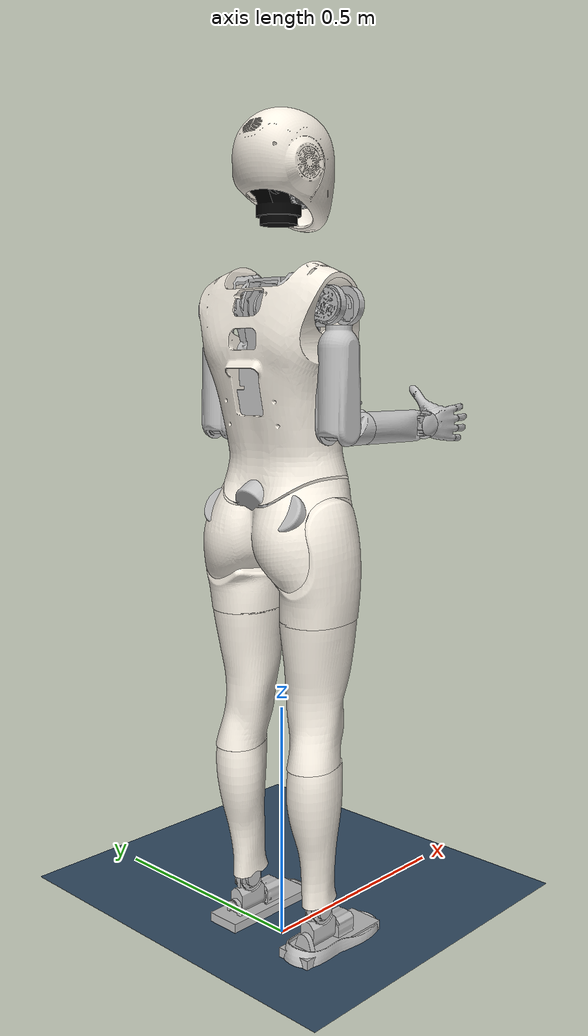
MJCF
<mujoco model="F2">
  <compiler angle="radian" meshdir="./meshes/"/>
  <default>
    <joint damping="0.1" armature="0.01" frictionloss="0.01"/>
  </default>
  <asset>
    <mesh name="pelvis" file="pelvis.STL"/>
    <mesh name="lattice_in_pelvis_link" file="lattice_in_pelvis_link.STL"/>
    <mesh name="left_hip_pitch_link" file="left_hip_pitch_link.STL"/>
    <mesh name="left_hip_roll_link" file="left_hip_roll_link.STL"/>
    <mesh name="left_hip_yaw_link" file="left_hip_yaw_link.STL"/>
    <mesh name="left_knee_link" file="left_knee_link.STL"/>
    <mesh name="left_ankle_pitch_link" file="left_ankle_pitch_link.STL"/>
    <mesh name="left_ankle_roll_link" file="left_ankle_roll_link.STL"/>
    <mesh name="lattice_in_l_knee_link" file="lattice_in_l_knee_link.STL"/>
    <mesh name="lattice_in_l_hip_yaw_link" file="lattice_in_l_hip_yaw_link.STL"/>
    <mesh name="lattice_in_l_hip_roll_link" file="lattice_in_l_hip_roll_link.STL"/>
    <mesh name="right_hip_pitch_link" file="right_hip_pitch_link.STL"/>
    <mesh name="right_hip_roll_link" file="right_hip_roll_link.STL"/>
    <mesh name="right_hip_yaw_link" file="right_hip_yaw_link.STL"/>
    <mesh name="right_knee_link" file="right_knee_link.STL"/>
    <mesh name="right_ankle_pitch_link" file="right_ankle_pitch_link.STL"/>
    <mesh name="right_ankle_roll_link" file="right_ankle_roll_link.STL"/>
    <mesh name="lattice_in_r_knee_link" file="lattice_in_r_knee_link.STL"/>
    <mesh name="lattice_in_r_hip_yaw_link" file="lattice_in_r_hip_yaw_link.STL"/>
    <mesh name="lattice_in_r_hip_roll_link" file="lattice_in_r_hip_roll_link.STL"/>
    <mesh name="waist_yaw_link" file="waist_yaw_link.STL"/>
    <mesh name="torso_link" file="torso_link.STL"/>
    <mesh name="lattice_in_torso_link" file="lattice_in_torso_link.STL"/>
    <mesh name="left_shoulder_pitch_link" file="left_shoulder_pitch_link.STL"/>
    <mesh name="left_shoulder_roll_link" file="left_shoulder_roll_link.STL"/>
    <mesh name="left_shoulder_yaw_link" file="left_shoulder_yaw_link.STL"/>
    <mesh name="left_elbow_link" file="left_elbow_link.STL"/>
    <mesh name="left_wrist_roll_link_v1_1" file="left_wrist_roll_link_v1_1.STL"/>
    <mesh name="left_wrist_yaw_link_v1_1" file="left_wrist_yaw_link_v1_1.STL"/>
    <mesh name="left_wrist_pitch_link_v1_1" file="left_wrist_pitch_link_v1_1.STL"/>
    <mesh name="left_hand_link" file="left_hand_link.STL"/>
    <mesh name="right_shoulder_pitch_link" file="right_shoulder_pitch_link.STL"/>
    <mesh name="right_shoulder_roll_link" file="right_shoulder_roll_link.STL"/>
    <mesh name="right_shoulder_yaw_link" file="right_shoulder_yaw_link.STL"/>
    <mesh name="right_elbow_link" file="right_elbow_link.STL"/>
    <mesh name="right_wrist_roll_link_v1_1" file="right_wrist_roll_link_v1_1.STL"/>
    <mesh name="right_wrist_yaw_link_v1_1" file="right_wrist_yaw_link_v1_1.STL"/>
    <mesh name="right_wrist_pitch_link_v1_1" file="right_wrist_pitch_link_v1_1.STL"/>
    <mesh name="right_hand_link" file="right_hand_link.STL"/>
    <mesh name="head_yaw_link" file="head_yaw_link.STL"/>
    <mesh name="head_pitch_link_v1" file="head_pitch_link_v1.STL"/>
    <mesh name="camera_head_up" file="camera_head_up.STL"/>
    <mesh name="camera_head_down" file="camera_head_down.STL"/>
  </asset>

  <worldbody>
    <body name="pelvis" pos="0 0 0.873">
      <inertial pos="-0.00635708 1.42565e-05 0.00326838" quat="0.570297 0.561872 -0.427193 0.4202" mass="2.509" diaginertia="0.01001 0.00750381 0.00695229"/>
      <joint name="floating_base_joint" type="free" limited="false" actuatorfrclimited="false"/>
      <geom type="mesh" contype="0" conaffinity="0" group="1" density="0" rgba="0.75 0.75 0.75 1" mesh="pelvis"/>
      <geom type="mesh" rgba="0.75 0.75 0.75 1" mesh="pelvis"/>
      <geom type="mesh" contype="0" conaffinity="0" group="1" density="0" rgba="0.957 0.929 0.882 1" mesh="lattice_in_pelvis_link"/>
      <body name="left_hip_pitch_link" pos="0 0.0495 0">
        <inertial pos="-0.00059823 0.053979 -0.0042224" quat="0.652315 0.75755 -0.0242065 0.00423816" mass="1.04" diaginertia="0.00138575 0.00113626 0.000872142"/>
        <joint name="left_hip_pitch_joint" pos="0 0 0" axis="0 1 0" range="-2.3562 2.3562" actuatorfrcrange="-75 75"/>
        <geom type="mesh" contype="0" conaffinity="0" group="1" density="0" rgba="0.75 0.75 0.75 1" mesh="left_hip_pitch_link"/>
        <geom type="mesh" rgba="0.75 0.75 0.75 1" mesh="left_hip_pitch_link"/>
        <body name="left_hip_roll_link" pos="0 0.0555 -0.005">
          <inertial pos="0.0015715 -0.0406088 -0.0402838" quat="0.595942 0.0278281 -0.0257545 0.802132" mass="0.51" diaginertia="0.00282716 0.00269308 0.00187179"/>
          <joint name="left_hip_roll_joint" pos="0 0 0" axis="1 0 0" range="-0.3491 2.1817" actuatorfrcrange="-87 87"/>
          <geom type="mesh" contype="0" conaffinity="0" group="1" density="0" rgba="0.75 0.75 0.75 1" mesh="left_hip_roll_link"/>
          <geom type="mesh" rgba="0.75 0.75 0.75 1" mesh="left_hip_roll_link"/>
          <geom pos="0 -0.055 0" quat="1 0 0 0" type="mesh" contype="0" conaffinity="0" group="1" density="0" rgba="0.957 0.929 0.882 1" mesh="lattice_in_l_hip_roll_link"/>
          <body name="left_hip_yaw_link" pos="0 0 -0.0536">
            <inertial pos="0.000235326 -0.00106704 -0.103858" quat="0.999838 0.00124236 -0.00123377 0.0179267" mass="2.472" diaginertia="0.0209421 0.0204684 0.00282082"/>
            <joint name="left_hip_yaw_joint" pos="0 0 0" axis="0 0 1" range="-2.0944 2.0944" actuatorfrcrange="-87 87"/>
            <geom type="mesh" contype="0" conaffinity="0" group="1" density="0" rgba="0.75 0.75 0.75 1" mesh="left_hip_yaw_link"/>
            <geom type="mesh" rgba="0.75 0.75 0.75 1" mesh="left_hip_yaw_link"/>
            <geom pos="0 0 0.0635" quat="1 0 0 0" type="mesh" contype="0" conaffinity="0" group="1" density="0" rgba="0.957 0.929 0.882 1" mesh="lattice_in_l_hip_yaw_link"/>
            <body name="left_knee_link" pos="0 0 -0.3304">
              <inertial pos="-0.000572377 -0.000248121 -0.157321" quat="0.723601 -0.00341533 -0.00184152 0.690208" mass="0.81" diaginertia="0.0124613 0.0122931 0.000640496"/>
              <joint name="left_knee_joint" pos="0 0 0" axis="0 1 0" range="-0.01745 2.3562" actuatorfrcrange="-120 120"/>
              <geom type="mesh" contype="0" conaffinity="0" group="1" density="0" rgba="0.75 0.75 0.75 1" mesh="left_knee_link"/>
              <geom type="mesh" rgba="0.75 0.75 0.75 1" mesh="left_knee_link"/>
              <geom type="mesh" contype="0" conaffinity="0" group="1" density="0" rgba="0.957 0.929 0.882 1" mesh="lattice_in_l_knee_link"/>
              <body name="left_ankle_pitch_link" pos="0 0 -0.39">
                <inertial pos="0.0024178 -1.256e-05 -0.0238176" quat="0.704903 0.052882 0.0527757 0.705358" mass="0.22" diaginertia="0.00023561 0.000170507 9.99229e-05"/>
                <joint name="left_ankle_pitch_joint" pos="0 0 0" axis="0 1 0" range="-0.873 1.2217" actuatorfrcrange="-89 89"/>
                <geom type="mesh" contype="0" conaffinity="0" group="1" density="0" rgba="0.75 0.75 0.75 1" mesh="left_ankle_pitch_link"/>
                <geom type="mesh" rgba="0.75 0.75 0.75 1" mesh="left_ankle_pitch_link"/>
                <body name="left_ankle_roll_link" pos="0 0 -0.058">
                  <inertial pos="0.0510876 0.00023922 -0.00447269" quat="0 0.707107 0 0.707107" mass="0.411" diaginertia="0.00047916 0.00047226 9.993e-05"/>
                  <joint name="left_ankle_roll_joint" pos="0 0 0" axis="1 0 0" range="-0.5236 0.5236" actuatorfrcrange="-12 12"/>
                  <geom type="mesh" contype="0" conaffinity="0" group="1" density="0" rgba="0.75 0.75 0.75 1" mesh="left_ankle_roll_link"/>
                  <geom name="l_foot_collision" type="box" size="0.115 0.039 0.01" pos="0.038 0 -0.025" rgba="0.75294 0.75294 0.75294 1" condim="3" />
                </body>
              </body>
            </body>
          </body>
        </body>
      </body>
      <body name="right_hip_pitch_link" pos="0 -0.0495 0">
        <inertial pos="-0.00059823 -0.053979 -0.0042224" quat="0.75755 0.652315 -0.00423816 0.0242065" mass="1.04" diaginertia="0.00138575 0.00113626 0.000872142"/>
        <joint name="right_hip_pitch_joint" pos="0 0 0" axis="0 1 0" range="-2.3562 2.3562" actuatorfrcrange="-75 75"/>
        <geom type="mesh" contype="0" conaffinity="0" group="1" density="0" rgba="0.75 0.75 0.75 1" mesh="right_hip_pitch_link"/>
        <geom type="mesh" rgba="0.75 0.75 0.75 1" mesh="right_hip_pitch_link"/>
        <body name="right_hip_roll_link" pos="0 -0.0555 -0.005">
          <inertial pos="0.00157665 0.0401879 -0.0402869" quat="0.797527 -0.0257039 0.0281181 0.602079" mass="0.51" diaginertia="0.00282663 0.002687 0.00186526"/>
          <joint name="right_hip_roll_joint" pos="0 0 0" axis="1 0 0" range="-2.1817 0.3491" actuatorfrcrange="-87 87"/>
          <geom type="mesh" contype="0" conaffinity="0" group="1" density="0" rgba="0.75 0.75 0.75 1" mesh="right_hip_roll_link"/>
          <geom type="mesh" rgba="0.75 0.75 0.75 1" mesh="right_hip_roll_link"/>
          <geom pos="0 0.055 0" quat="1 0 0 0" type="mesh" contype="0" conaffinity="0" group="1" density="0" rgba="0.957 0.929 0.882 1" mesh="lattice_in_r_hip_roll_link"/>
          <body name="right_hip_yaw_link" pos="0 0 -0.0536">
            <inertial pos="0.000402709 0.000752913 -0.103856" quat="0.999891 0.00375328 -0.00228738 -0.0141039" mass="2.472" diaginertia="0.0209443 0.0204697 0.0028221"/>
            <joint name="right_hip_yaw_joint" pos="0 0 0" axis="0 0 1" range="-2.0944 2.0944" actuatorfrcrange="-87 87"/>
            <geom type="mesh" contype="0" conaffinity="0" group="1" density="0" rgba="0.75 0.75 0.75 1" mesh="right_hip_yaw_link"/>
            <geom type="mesh" rgba="0.75 0.75 0.75 1" mesh="right_hip_yaw_link"/>
            <geom pos="0 0 0.0635" quat="1 0 0 0" type="mesh" contype="0" conaffinity="0" group="1" density="0" rgba="0.957 0.929 0.882 1" mesh="lattice_in_r_hip_yaw_link"/>
            <body name="right_knee_link" pos="0 0 -0.3304">
              <inertial pos="-0.000569391 -0.000142016 -0.157324" quat="0.696563 -0.00165239 -0.0036027 0.717485" mass="0.81" diaginertia="0.0124607 0.0122939 0.000640507"/>
              <joint name="right_knee_joint" pos="0 0 0" axis="0 1 0" range="-0.01745 2.3562" actuatorfrcrange="-120 120"/>
              <geom type="mesh" contype="0" conaffinity="0" group="1" density="0" rgba="0.75 0.75 0.75 1" mesh="right_knee_link"/>
              <geom type="mesh" rgba="0.75 0.75 0.75 1" mesh="right_knee_link"/>
              <geom type="mesh" contype="0" conaffinity="0" group="1" density="0" rgba="0.957 0.929 0.882 1" mesh="lattice_in_r_knee_link"/>
              <body name="right_ankle_pitch_link" pos="0 0 -0.39">
                <inertial pos="0.0024178 -1.257e-05 -0.023818" quat="0.704903 0.052882 0.0527757 0.705358" mass="0.22" diaginertia="0.00023561 0.000170507 9.99229e-05"/>
                <joint name="right_ankle_pitch_joint" pos="0 0 0" axis="0 1 0" range="-0.873 1.2217" actuatorfrcrange="-89 89"/>
                <geom type="mesh" contype="0" conaffinity="0" group="1" density="0" rgba="0.75 0.75 0.75 1" mesh="right_ankle_pitch_link"/>
                <geom type="mesh" rgba="0.75 0.75 0.75 1" mesh="right_ankle_pitch_link"/>
                <body name="right_ankle_roll_link" pos="0 0 -0.058">
                  <inertial pos="0.0510876 0.00023921 -0.00447269" quat="0 0.707107 0 0.707107" mass="0.411" diaginertia="0.00047916 0.00047226 9.993e-05"/>
                  <joint name="right_ankle_roll_joint" pos="0 0 0" axis="1 0 0" range="-0.5236 0.5236" actuatorfrcrange="-12 12"/>
                  <geom type="mesh" contype="0" conaffinity="0" group="1" density="0" rgba="0.75 0.75 0.75 1" mesh="right_ankle_roll_link"/>
                  <geom name="r_foot_collision" type="box" size="0.115 0.039 0.01" pos="0.038 0 -0.025" rgba="0.75294 0.75294 0.75294 1" condim="3" />
                </body>
              </body>
            </body>
          </body>
        </body>
      </body>
      <body name="waist_yaw_link" pos="0 0 0.0955">
        <inertial pos="0 0 -0.038" quat="0.5 0.5 -0.5 0.5" mass="0.015" diaginertia="3.7638e-06 2.0041e-06 2.0041e-06"/>
        <joint name="waist_yaw_joint" pos="0 0 0" axis="0 0 1" range="-1.5708 1.5708" actuatorfrcrange="-87 87"/>
        <geom type="mesh" contype="0" conaffinity="0" group="1" density="0" rgba="0.75 0.75 0.75 1" mesh="waist_yaw_link"/>
        <body name="torso_link">
          <inertial pos="-0.000427592 0.00133209 0.192573" quat="0.999983 0.000374811 0.00583186 0.000211129" mass="8.559" diaginertia="0.149386 0.144217 0.0339852"/>
          <joint name="waist_roll_joint" pos="0 0 0" axis="1 0 0" range="-0.5236 0.5236" actuatorfrcrange="-87 87"/>
          <geom type="mesh" contype="0" conaffinity="0" group="1" density="0" rgba="0.75 0.75 0.75 1" mesh="torso_link"/>
          <geom type="mesh" rgba="0.75 0.75 0.75 1" mesh="torso_link"/>
          <geom pos="0 0 0.0585" type="mesh" contype="0" conaffinity="0" group="1" density="0" rgba="0.957 0.929 0.882 1" mesh="lattice_in_torso_link"/>
          <body name="left_shoulder_pitch_link" pos="-0.015 0.05635 0.342">
            <inertial pos="5.543e-05 0.0554533 5.429e-05" quat="0.500477 0.499362 -0.499832 0.500328" mass="1.277" diaginertia="0.00194002 0.00178135 0.00103975"/>
            <geom type="mesh" contype="0" conaffinity="0" group="1" density="0" rgba="0.75 0.75 0.75 1" mesh="left_shoulder_pitch_link"/>
            <geom type="mesh" rgba="0.75 0.75 0.75 1" mesh="left_shoulder_pitch_link"/>
            <body name="left_shoulder_roll_link" pos="0 0.1031 0">
              <inertial pos="0 -0.00015563 -0.00797243" quat="0.449914 0.545507 0.449914 0.545507" mass="0.229" diaginertia="7.05648e-05 6.60152e-05 5.784e-05"/>
              <geom type="mesh" contype="0" conaffinity="0" group="1" density="0" rgba="0.75 0.75 0.75 1" mesh="left_shoulder_roll_link"/>
              <geom type="mesh" rgba="0.75 0.75 0.75 1" mesh="left_shoulder_roll_link"/>
              <body name="left_shoulder_yaw_link">
                <inertial pos="-7.8318e-05 0.001011 -0.12915" mass="1.194" diaginertia="0.00412845 0.00411827 0.00084103"/>
                <geom type="mesh" contype="0" conaffinity="0" group="1" density="0" rgba="0.75 0.75 0.75 1" mesh="left_shoulder_yaw_link"/>
                <geom type="mesh" rgba="0.75 0.75 0.75 1" mesh="left_shoulder_yaw_link"/>
                <body name="left_elbow_link" pos="0 0 -0.2295">
                  <inertial pos="0.0167741 0 -0.00133301" quat="0 0.684589 0 0.728929" mass="0.185" diaginertia="0.000124726 0.00011358 7.98035e-05"/>
                  <geom type="mesh" contype="0" conaffinity="0" group="1" density="0" rgba="0.75 0.75 0.75 1" mesh="left_elbow_link"/>
                  <geom type="mesh" rgba="0.75 0.75 0.75 1" mesh="left_elbow_link"/>
                  <body name="left_wrist_roll_link">
                    <inertial pos="0.0985386 -0.00025438 -0.00071846" quat="0.49661 0.497949 0.510134 0.495166" mass="1.372" diaginertia="0.00443163 0.00434654 0.000486748"/>
                    <geom type="mesh" contype="0" conaffinity="0" group="1" density="0" rgba="0.75 0.75 0.75 1" mesh="left_wrist_roll_link_v1_1"/>
                    <geom type="mesh" rgba="0.75 0.75 0.75 1" mesh="left_wrist_roll_link_v1_1"/>
                    <body name="left_wrist_yaw_link" pos="0.23 0 0">
                      <inertial pos="0.0075268 0 0" quat="0.5 0.5 -0.5 0.5" mass="0.042" diaginertia="1.443e-05 1.052e-05 7.83e-06"/>
                      <geom type="mesh" contype="0" conaffinity="0" group="1" density="0" rgba="0.75 0.75 0.75 1" mesh="left_wrist_yaw_link_v1_1"/>
                      <geom type="mesh" rgba="0.75 0.75 0.75 1" mesh="left_wrist_yaw_link_v1_1"/>
                      <body name="left_wrist_pitch_link" pos="0.021 0 0">
                        <inertial pos="0.0745833 -0.00635348 0.00761055" quat="0.678574 0.334153 0.560893 0.336567" mass="0.53" diaginertia="0.00194365 0.00160851 0.000486104"/>
                        <geom type="mesh" contype="0" conaffinity="0" group="1" density="0" rgba="0.75 0.75 0.75 1" mesh="left_wrist_pitch_link_v1_1"/>
                        <geom pos="0.016 0 0" quat="1 0 0 0" type="mesh" contype="0" conaffinity="0" group="1" density="0" rgba="0.75 0.75 0.75 1" mesh="left_hand_link"/>
                        <geom pos="0.016 0 0" quat="1 0 0 0" type="mesh" rgba="0.75 0.75 0.75 1" mesh="left_hand_link"/>
                      </body>
                    </body>
                  </body>
                </body>
              </body>
            </body>
          </body>
          <body name="right_shoulder_pitch_link" pos="-0.015 -0.05635 0.342">
            <inertial pos="0.00015543 -0.0554533 -5.429e-05" quat="0.500328 0.499832 -0.499362 0.500477" mass="1.277" diaginertia="0.00194002 0.00178135 0.00103975"/>
            <geom type="mesh" contype="0" conaffinity="0" group="1" density="0" rgba="0.75 0.75 0.75 1" mesh="right_shoulder_pitch_link"/>
            <geom type="mesh" rgba="0.75 0.75 0.75 1" mesh="right_shoulder_pitch_link"/>
            <body name="right_shoulder_roll_link" pos="0 -0.1031 0">
              <inertial pos="0 -0.00015563 -0.00797243" quat="0.449914 0.545507 0.449914 0.545507" mass="0.229" diaginertia="7.05648e-05 6.60152e-05 5.784e-05"/>
              <geom type="mesh" contype="0" conaffinity="0" group="1" density="0" rgba="0.75 0.75 0.75 1" mesh="right_shoulder_roll_link"/>
              <geom type="mesh" rgba="0.75 0.75 0.75 1" mesh="right_shoulder_roll_link"/>
              <body name="right_shoulder_yaw_link">
                <inertial pos="-7.8318e-05 0.001011 -0.12915" mass="1.194" diaginertia="0.00412845 0.00411827 0.00084103"/>
                <geom type="mesh" contype="0" conaffinity="0" group="1" density="0" rgba="0.75 0.75 0.75 1" mesh="right_shoulder_yaw_link"/>
                <geom type="mesh" rgba="0.75 0.75 0.75 1" mesh="right_shoulder_yaw_link"/>
                <body name="right_elbow_link" pos="0 0 -0.2295">
                  <inertial pos="0.0167741 0 -0.00133301" quat="0 0.684589 0 0.728929" mass="0.185" diaginertia="0.000124726 0.00011358 7.98035e-05"/>
                  <geom type="mesh" contype="0" conaffinity="0" group="1" density="0" rgba="0.75 0.75 0.75 1" mesh="right_elbow_link"/>
                  <geom type="mesh" rgba="0.75 0.75 0.75 1" mesh="right_elbow_link"/>
                  <body name="right_wrist_roll_link">
                    <inertial pos="0.0985386 -0.00025438 -0.00071846" quat="0.49661 0.497949 0.510134 0.495166" mass="1.372" diaginertia="0.00443163 0.00434654 0.000486748"/>
                    <geom type="mesh" contype="0" conaffinity="0" group="1" density="0" rgba="0.75 0.75 0.75 1" mesh="right_wrist_roll_link_v1_1"/>
                    <geom type="mesh" rgba="0.75 0.75 0.75 1" mesh="right_wrist_roll_link_v1_1"/>
                    <body name="right_wrist_yaw_link" pos="0.23 0 0">
                      <inertial pos="0.0075268 0 0" quat="0.5 0.5 -0.5 0.5" mass="0.042" diaginertia="1.443e-05 1.052e-05 7.83e-06"/>
                      <geom type="mesh" contype="0" conaffinity="0" group="1" density="0" rgba="0.75 0.75 0.75 1" mesh="right_wrist_yaw_link_v1_1"/>
                      <geom type="mesh" rgba="0.75 0.75 0.75 1" mesh="right_wrist_yaw_link_v1_1"/>
                      <body name="right_wrist_pitch_link" pos="0.021 0 0">
                        <inertial pos="0.0745935 0.00622963 0.00761411" quat="0.335443 0.560268 0.335448 0.679009" mass="0.53" diaginertia="0.00194428 0.00160939 0.000486062"/>
                        <geom type="mesh" contype="0" conaffinity="0" group="1" density="0" rgba="0.75 0.75 0.75 1" mesh="right_wrist_pitch_link_v1_1"/>
                        <geom pos="0.016 0 0" quat="1 0 0 0" type="mesh" contype="0" conaffinity="0" group="1" density="0" rgba="0.75 0.75 0.75 1" mesh="right_hand_link"/>
                        <geom pos="0.016 0 0" quat="1 0 0 0" type="mesh" rgba="0.75 0.75 0.75 1" mesh="right_hand_link"/>
                      </body>
                    </body>
                  </body>
                </body>
              </body>
            </body>
          </body>
          <body name="head_yaw_link" pos="-0.011 0 0.5218">
            <inertial pos="-0.0115151 0 0.019677" quat="0.959901 0 -0.28034 0" mass="0.56" diaginertia="0.000485828 0.000458813 0.000216341"/>
            <geom type="mesh" contype="0" conaffinity="0" group="1" density="0" rgba="0.02 0.02 0.02 1" mesh="head_yaw_link"/>
            <geom type="mesh" rgba="0.02 0.02 0.02 1" mesh="head_yaw_link"/>
            <body name="head_pitch_link" pos="-0.0295 0 0.0503">
              <inertial pos="0.0591379 9.60588e-05 0.023895" quat="0.333115 0.621776 0.626101 0.332305" mass="1.10494" diaginertia="0.00629485 0.00565829 0.00484556"/>
              <geom type="mesh" contype="0" conaffinity="0" group="1" density="0" rgba="0.957 0.929 0.882 1" mesh="head_pitch_link_v1"/>
              <geom pos="0.098947 0 0.096517" quat="0.999996 0 -0.0028028 0" type="mesh" contype="0" conaffinity="0" group="1" density="0" rgba="0.02 0.02 0.02 1" mesh="camera_head_up"/>
              <geom pos="0.098947 0 0.096517" quat="0.999996 0 -0.0028028 0" type="mesh" rgba="0.02 0.02 0.02 1" mesh="camera_head_up"/>
              <geom pos="0.12421 0 -0.019186" quat="0.985291 0 0.170887 0" type="mesh" contype="0" conaffinity="0" group="1" density="0" rgba="0.75 0.75 0.75 1" mesh="camera_head_down"/>
              <geom pos="0.12421 0 -0.019186" quat="0.985291 0 0.170887 0" type="mesh" rgba="0.75 0.75 0.75 1" mesh="camera_head_down"/>
            </body>
          </body>
        </body>
      </body>
    </body>
  </worldbody>
  <actuator>
    <motor name="left_hip_pitch_joint" joint="left_hip_pitch_joint"/>
    <motor name="left_hip_roll_joint" joint="left_hip_roll_joint"/>
    <motor name="left_hip_yaw_joint" joint="left_hip_yaw_joint"/>
    <motor name="left_knee_joint" joint="left_knee_joint"/>
    <motor name="left_ankle_pitch_joint" joint="left_ankle_pitch_joint"/>
    <motor name="left_ankle_roll_joint" joint="left_ankle_roll_joint"/>

    <motor name="right_hip_pitch_joint" joint="right_hip_pitch_joint"/>
    <motor name="right_hip_roll_joint" joint="right_hip_roll_joint"/>
    <motor name="right_hip_yaw_joint" joint="right_hip_yaw_joint"/>
    <motor name="right_knee_joint" joint="right_knee_joint"/>
    <motor name="right_ankle_pitch_joint" joint="right_ankle_pitch_joint"/>
    <motor name="right_ankle_roll_joint" joint="right_ankle_roll_joint"/>

    <motor name="waist_yaw_joint" joint="waist_yaw_joint"/>
    <motor name="waist_roll_joint" joint="waist_roll_joint"/>
  </actuator>
  <visual>
    <headlight diffuse="0.6 0.6 0.6" ambient="0.1 0.1 0.1" specular="0.9 0.9 0.9"/>
    <rgba haze="0.15 0.25 0.35 1"/>
    <global azimuth="-140" elevation="-20"/>
  </visual>

  <asset>
    <texture type="skybox" builtin="gradient" rgb1="0 0 0" rgb2="0 0 0" width="800" height="800"/>
    <texture type="2d" name="plane" builtin="checker" mark="edge" rgb1="0.3 0.4 0.5" rgb2="0.1 0.2 0.3" markrgb="0.8 0.8 0.8" width="300" height="300"/>
    <material name="plane" texture="plane" texuniform="true" texrepeat="2 2" reflectance="0.0"/>
  </asset>

  <worldbody>
    <light mode="trackcom" pos="1 0 3.5" dir="0 0 -1" directional="true"/>
    <geom name="floor" size="0 0 0.05" type="plane" material="plane" friction="1.0" />
  </worldbody>
</mujoco>
